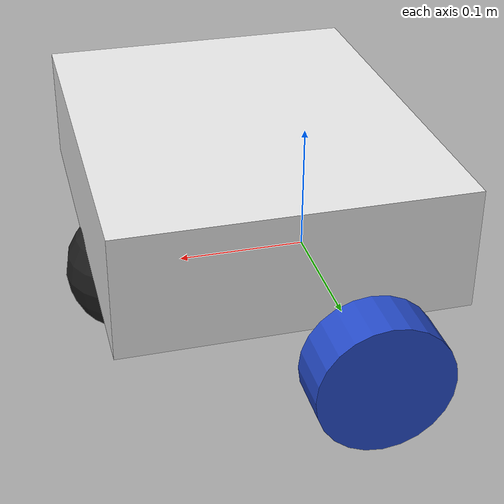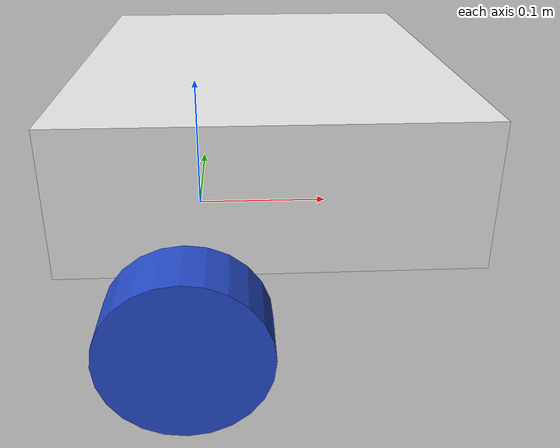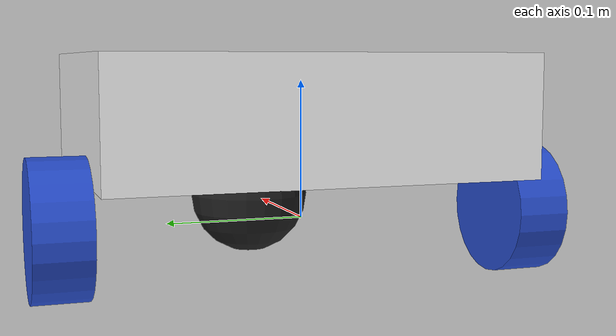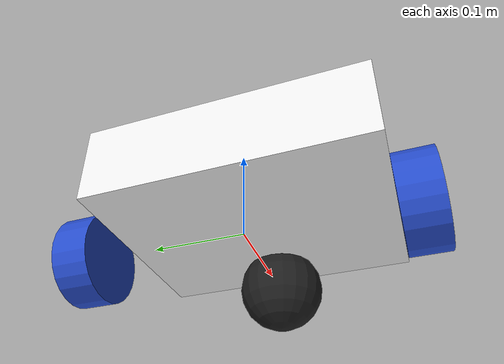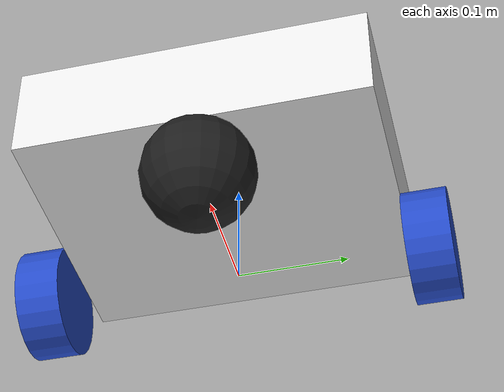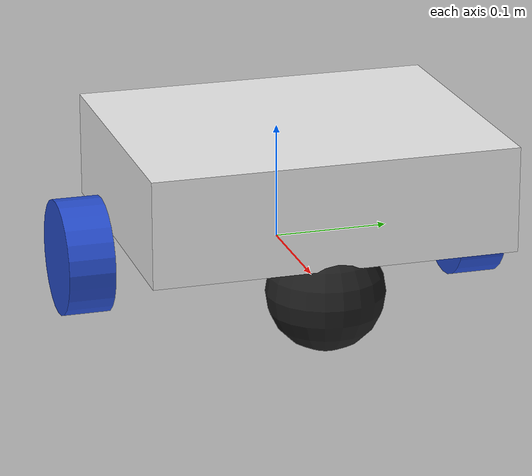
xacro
<?xml version="1.0"?>
<robot xmlns:xacro="http://www.ros.org/wiki/xacro">
<link name="base_link">
</link>

    <joint name="chassis_joint" type="fixed">
    <parent link="base_link"/>
    <child link="chassis"/>
    <origin xyz="-0.1 0 0"/>
</joint>

<link name="chassis">
    <visual>
        <origin xyz="0.15 0 0.075" rpy="0 0 0"/>
        <geometry>
            <box size="0.25 0.31 0.09"/>
        </geometry>
        <material name="white"/>
    </visual>
    <collision>
        <origin xyz="0.15 0 0.075" rpy="0 0 0"/>
        <geometry>
            <box size="0.25 0.31 0.09"/>
        </geometry>
        <material name="white"/>
    </collision>

</link>

<!-- LEFT WHEEL -->

<joint name="left_wheel_joint" type="continuous">
    <parent link="base_link"/>
    <child link="left_wheel"/>
    <origin xyz="0 0.175 0" rpy="-${pi/2} 0 0"/>
    <axis xyz="0 0 1"/>
</joint>

<link name="left_wheel">
    <visual>
        <geometry>
            <cylinder length="0.04" radius="0.05" />/>
        </geometry>
        <material name="blue"/>
    </visual>
    <collision>
        <geometry>
            <cylinder length="0.04" radius="0.05" />/>
        </geometry>
        <material name="blue"/>
    </collision>

</link>
<!-- RIGHT WHEEL -->

<joint name="right_wheel_joint" type="continuous">
    <parent link="base_link"/>
    <child link="right_wheel"/>
    <origin xyz="0 -0.175 0" rpy="${pi/2} 0 0"/>
    <axis xyz="0 0 -1"/>
</joint>

<link name="right_wheel">
    <visual>
        <geometry>
            <cylinder length="0.04" radius="0.05" />/>
        </geometry>
        <material name="blue"/>
    </visual>
    <collision>
    <geometry>
            <cylinder length="0.04" radius="0.05" />/>
        </geometry>
        <material name="blue"/>
    </collision>

</link>
<!-- CASTER WHEEL -->

<joint name="caster_wheel_joint" type="fixed">
    <parent link="chassis"/>
    <child link="caster_wheel"/>
    <origin xyz="0.24 0 0" rpy="0 0 0"/>
</joint>

<link name="caster_wheel">
    <visual>
        <geometry>
            <sphere radius="0.05" />
        </geometry>
        <material name="black"/>
    </visual>
    <collision>
        <geometry>
            <sphere radius="0.05" />
        </geometry>
        <material name="black"/>
    </collision>

</link>
</robot>
